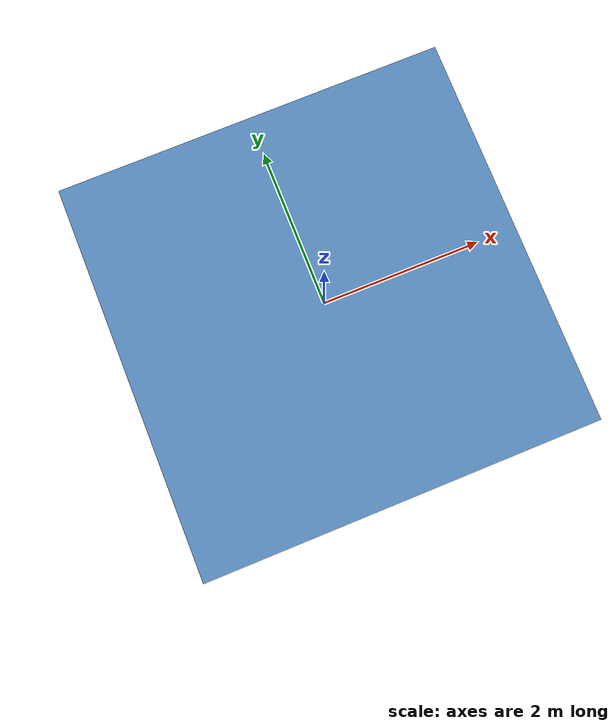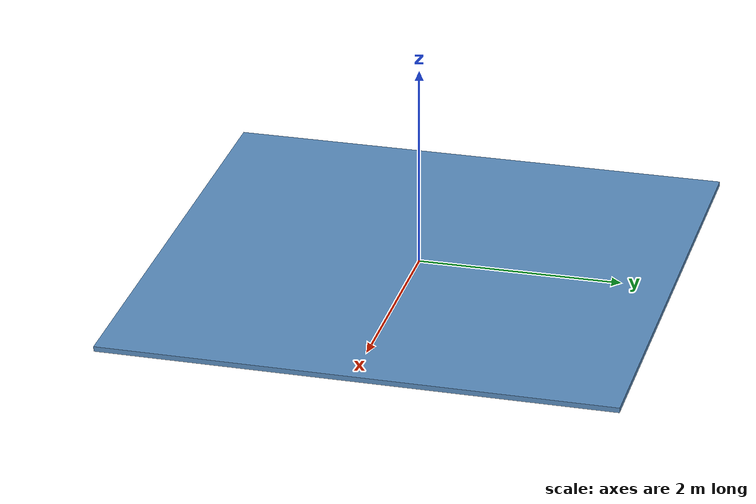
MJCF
<mujoco model="floor">
  <option integrator="implicitfast" timestep="0.005" gravity="0 0 -9.81"/>
  <size memory="1000M" nuser_site="6"/>
  <compiler coordinate="local"/>

  <worldbody>
    <light cutoff="30" pos="0 1 1" dir="0 -1 -2"/>
    <light cutoff="30" pos="0 -1 1" dir="0 1 -2"/>

    <!-- Floor: 0.05 x 5 x 5 horizontal plate, top surface at z=0 -->
    <geom type="box" contype="1" conaffinity="1" density="50"
          rgba="0.35 0.55 0.75 1"
          solimp="0.5 0.7 0.01" friction="0.5 0.004 0.0003"
          solref="0.02 1" priority="0" margin="0" condim="3" group="0"
          pos="0 0 -0.025"
          quat="0.707107 0 0.707107 0"
          size="0.025 2.5 2.5"
          name="floor"/>
  </worldbody>

  <tendon/>
  <actuator/>
  <contact/>
  <equality/>
  <asset/>
</mujoco>
